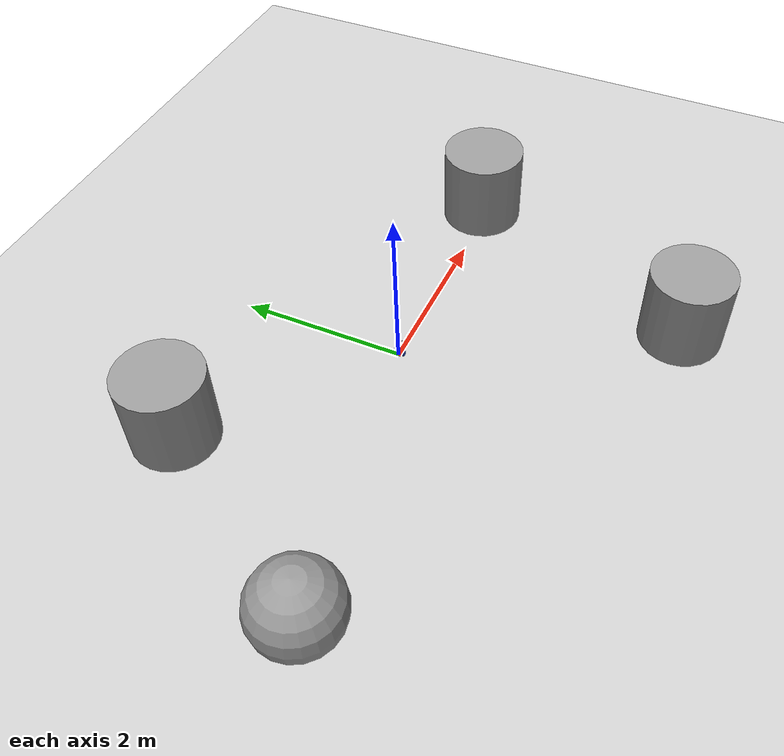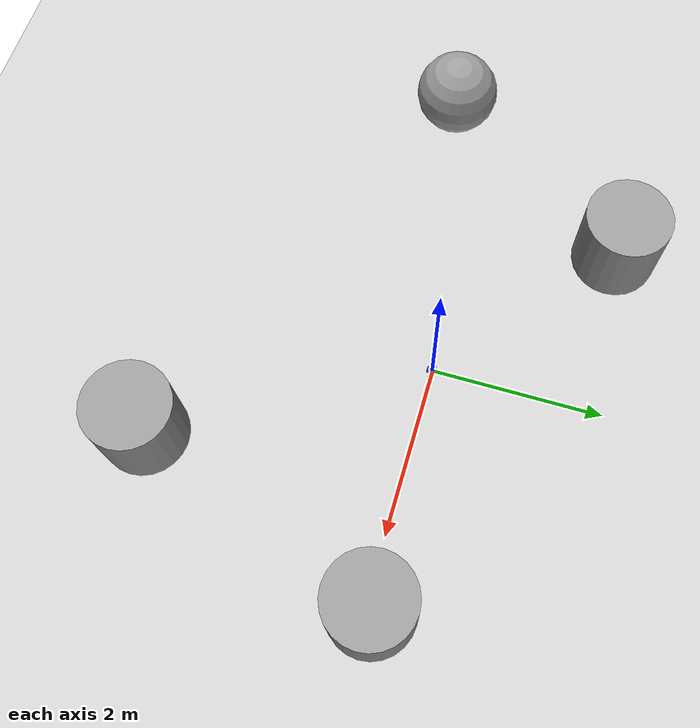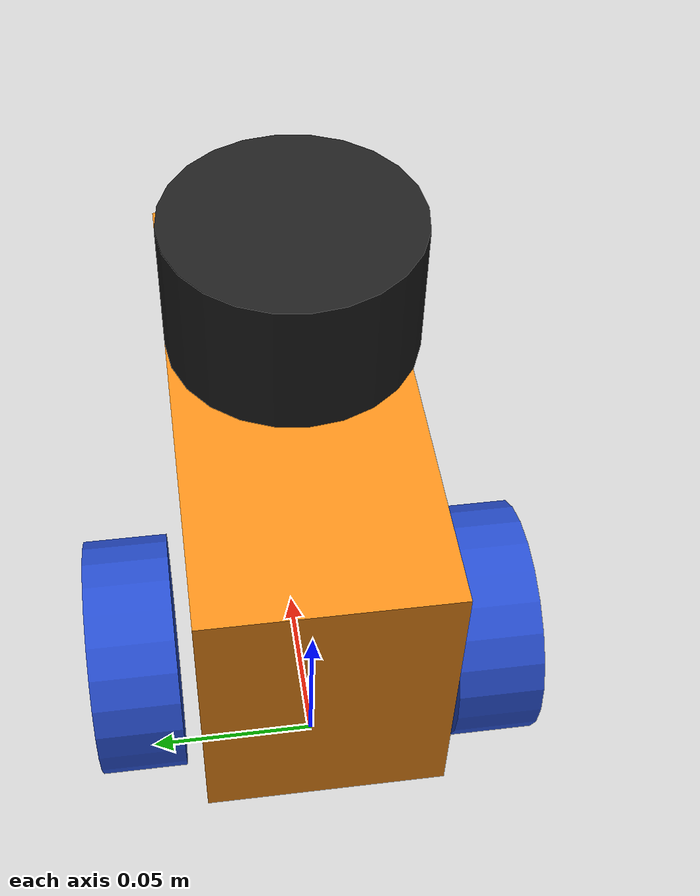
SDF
<sdf version="1.7">
 <world name="default">
  <light name="sun" type="directional">
   <pose>0 0 10 0 -0 0</pose>
   <diffuse>0.8 0.8 0.8 1</diffuse>
   <specular>0.2 0.2 0.2 1</specular>
   <attenuation>
    <range>1000</range>
    <constant>0.9</constant>
    <linear>0.01</linear>
    <quadratic>0.001</quadratic>
   </attenuation>
   <direction>-0.5 0.1 -0.9</direction>
   <spot><inner_angle>0</inner_angle><outer_angle>0</outer_angle><falloff>0</falloff></spot>
  </light>
  <model name="ground_plane">
   <static>1</static>
   <link name="link">
    <collision name="collision">
     <geometry><plane><normal>0 0 1</normal><size>100 100</size></plane></geometry>
     <surface>
      <contact><collide_bitmask>65535</collide_bitmask></contact>
      <friction><ode><mu>100</mu><mu2>50</mu2></ode></friction>
     </surface>
    </collision>
    <visual name="visual">
     <cast_shadows>0</cast_shadows>
     <geometry><plane><normal>0 0 1</normal><size>100 100</size></plane></geometry>
     <material>
      <script><uri>file://media/materials/scripts/gazebo.material</uri><name>Gazebo/Grey</name></script>
     </material>
    </visual>
   </link>
  </model>
  <gravity>0 0 -9.8</gravity>
  <magnetic_field>6e-06 2.3e-05 -4.2e-05</magnetic_field>
  <atmosphere type="adiabatic"/>
  <physics type="ode">
   <max_step_size>0.001</max_step_size>
   <real_time_factor>1</real_time_factor>
   <real_time_update_rate>1000</real_time_update_rate>
  </physics>
  <scene><ambient>0.4 0.4 0.4 1</ambient><background>0.7 0.7 0.7 1</background><shadows>1</shadows></scene>
  <audio><device>default</device></audio>
  <spherical_coordinates>
   <surface_model>EARTH_WGS84</surface_model>
   <latitude_deg>0</latitude_deg>
   <longitude_deg>0</longitude_deg>
   <elevation>0</elevation>
   <heading_deg>0</heading_deg>
  </spherical_coordinates>
  <model name="mandooka">
   <link name="base_link">
    <inertial>
     <pose>0.03582 0 0.043115 0 -0 0</pose>
     <mass>0.61</mass>
     <inertia>
      <ixx>0.00126098</ixx>
      <ixy>0</ixy>
      <ixz>3.15574e-05</ixz>
      <iyy>0.00214807</iyy>
      <iyz>0</iyz>
      <izz>0.00142132</izz>
     </inertia>
    </inertial>
    <collision name="base_link_fixed_joint_lump__chassis_collision">
     <pose>0.035 0 0.03 0 -0 0</pose>
     <geometry><box><size>0.16 0.07 0.09</size></box></geometry>
    </collision>
    <collision name="base_link_fixed_joint_lump__caster_wheel_collision_1">
     <pose>0.085 0 -0.02 0 -0 0</pose>
     <geometry><sphere><radius>0.015</radius></sphere></geometry>
     <surface><friction><ode><mu>0.001</mu><mu2>0.001</mu2></ode></friction></surface>
    </collision>
    <collision name="base_link_fixed_joint_lump__laser_frame_collision_2">
     <pose>0.035 0 0.115 0 -0 0</pose>
     <geometry><cylinder><length>0.04</length><radius>0.05</radius></cylinder></geometry>
    </collision>
    <visual name="base_link_fixed_joint_lump__chassis_visual">
     <pose>0.035 0 0.03 0 -0 0</pose>
     <geometry><box><size>0.16 0.07 0.09</size></box></geometry>
     <material>
      <script><name>Gazebo/Orange</name><uri>file://media/materials/scripts/gazebo.material</uri></script>
     </material>
    </visual>
    <visual name="base_link_fixed_joint_lump__caster_wheel_visual_1">
     <pose>0.085 0 -0.02 0 -0 0</pose>
     <geometry><sphere><radius>0.015</radius></sphere></geometry>
     <material>
      <script><name>Gazebo/White</name><uri>file://media/materials/scripts/gazebo.material</uri></script>
     </material>
    </visual>
    <visual name="base_link_fixed_joint_lump__laser_frame_visual_2">
     <pose>0.035 0 0.115 0 -0 0</pose>
     <geometry><cylinder><length>0.04</length><radius>0.035</radius></cylinder></geometry>
     <material>
      <script><name>Gazebo/Black</name><uri>file://media/materials/scripts/gazebo.material</uri></script>
     </material>
    </visual>
    <visual name="base_link_fixed_joint_lump__laser_frame_visual_3">
     <pose>0.035 0 0.065 0 -0 0</pose>
     <geometry><cylinder><length>0.1</length><radius>0.01</radius></cylinder></geometry>
     <material>
      <script><name>Gazebo/Black</name><uri>file://media/materials/scripts/gazebo.material</uri></script>
     </material>
    </visual>
    <sensor name="laser" type="ray">
     <visualize>1</visualize>
     <update_rate>10</update_rate>
     <ray>
      <scan>
       <horizontal>
        <samples>360</samples>
        <min_angle>-3.14</min_angle>
        <max_angle>3.14</max_angle>
        <resolution>1</resolution>
       </horizontal>
       <vertical><samples>1</samples><min_angle>0</min_angle><max_angle>0</max_angle></vertical>
      </scan>
      <range><min>0.3</min><max>12</max></range>
     </ray>
     <plugin name="laser_controller" filename="libgazebo_ros_ray_sensor.so">
      <ros><argument>~/out:=scan</argument></ros>
      <output_type>sensor_msgs/LaserScan</output_type>
      <frame_name>laser_frame</frame_name>
     </plugin>
     <pose>0.035 0 0.115 0 -0 0</pose>
    </sensor>
   </link>
   <joint name="left_wheel_joint" type="revolute">
    <pose relative_to="base_link">0 0.0525 0 -1.5708 0 0</pose>
    <parent>base_link</parent>
    <child>left_wheel</child>
    <axis>
     <xyz>0 0 1</xyz>
     <limit><lower>-1e+16</lower><upper>1e+16</upper></limit>
     <dynamics><spring_reference>0</spring_reference><spring_stiffness>0</spring_stiffness></dynamics>
    </axis>
   </joint>
   <link name="left_wheel">
    <pose relative_to="left_wheel_joint">0 0 0 0 -0 0</pose>
    <inertial>
     <mass>0.035</mass>
     <inertia>
      <ixx>1.25417e-05</ixx>
      <ixy>0</ixy>
      <ixz>0</ixz>
      <iyy>1.25417e-05</iyy>
      <iyz>0</iyz>
      <izz>2.14375e-05</izz>
     </inertia>
    </inertial>
    <collision name="left_wheel_collision">
     <geometry><sphere><radius>0.035</radius></sphere></geometry>
    </collision>
    <visual name="left_wheel_visual">
     <geometry><cylinder><length>0.025</length><radius>0.035</radius></cylinder></geometry>
     <material>
      <script><name>Gazebo/Blue</name><uri>file://media/materials/scripts/gazebo.material</uri></script>
     </material>
    </visual>
   </link>
   <joint name="right_wheel_joint" type="revolute">
    <pose relative_to="base_link">0 -0.0525 0 1.5708 -0 0</pose>
    <parent>base_link</parent>
    <child>right_wheel</child>
    <axis>
     <xyz>0 0 -1</xyz>
     <limit><lower>-1e+16</lower><upper>1e+16</upper></limit>
     <dynamics><spring_reference>0</spring_reference><spring_stiffness>0</spring_stiffness></dynamics>
    </axis>
   </joint>
   <link name="right_wheel">
    <pose relative_to="right_wheel_joint">0 0 0 0 -0 0</pose>
    <inertial>
     <mass>0.035</mass>
     <inertia>
      <ixx>1.25417e-05</ixx>
      <ixy>0</ixy>
      <ixz>0</ixz>
      <iyy>1.25417e-05</iyy>
      <iyz>0</iyz>
      <izz>2.14375e-05</izz>
     </inertia>
    </inertial>
    <collision name="right_wheel_collision">
     <geometry><sphere><radius>0.035</radius></sphere></geometry>
    </collision>
    <visual name="right_wheel_visual">
     <geometry><cylinder><length>0.025</length><radius>0.035</radius></cylinder></geometry>
     <material>
      <script><name>Gazebo/Blue</name><uri>file://media/materials/scripts/gazebo.material</uri></script>
     </material>
    </visual>
   </link>
   <static>0</static>
   <plugin name="gazebo_ros2_control" filename="libgazebo_ros2_control.so">
    <parameters>/home/wagle/mandooka_ws/install/mandooka/share/mandooka/config/my_controllers.yaml</parameters>
    <parameters>/home/wagle/mandooka_ws/install/mandooka/share/mandooka/config/gaz_ros2_ctl_use_sim.yaml</parameters>
   </plugin>
   <pose>0.0125 -9.6e-05 0.034998 -2.6e-05 -2.2e-05 -0.00235</pose>
  </model>
  <model name="unit_sphere">
   <pose>-3.51789 -0.640386 0.5 0 -0 0</pose>
   <link name="link">
    <inertial>
     <mass>1</mass>
     <inertia><ixx>0.1</ixx><ixy>0</ixy><ixz>0</ixz><iyy>0.1</iyy><iyz>0</iyz><izz>0.1</izz></inertia>
    </inertial>
    <collision name="collision"><geometry><sphere><radius>0.5</radius></sphere></geometry></collision>
    <visual name="visual">
     <geometry><sphere><radius>0.5</radius></sphere></geometry>
     <material>
      <script><name>Gazebo/Grey</name><uri>file://media/materials/scripts/gazebo.material</uri></script>
     </material>
    </visual>
   </link>
  </model>
  <model name="unit_cylinder">
   <pose>-2.0261 1.72845 0.499997 3e-06 4e-06 -0</pose>
   <link name="link">
    <inertial>
     <mass>1</mass>
     <inertia><ixx>0.145833</ixx><ixy>0</ixy><ixz>0</ixz><iyy>0.145833</iyy><iyz>0</iyz><izz>0.125</izz></inertia>
    </inertial>
    <collision name="collision">
     <geometry><cylinder><radius>0.5</radius><length>1</length></cylinder></geometry>
    </collision>
    <visual name="visual">
     <geometry><cylinder><radius>0.5</radius><length>1</length></cylinder></geometry>
     <material>
      <script><name>Gazebo/Grey</name><uri>file://media/materials/scripts/gazebo.material</uri></script>
     </material>
    </visual>
   </link>
  </model>
  <model name="unit_cylinder_0">
   <pose>2.7928 0.078966 0.499993 -3e-06 -4e-06 -0</pose>
   <link name="link">
    <inertial>
     <mass>1</mass>
     <inertia><ixx>0.145833</ixx><ixy>0</ixy><ixz>0</ixz><iyy>0.145833</iyy><iyz>0</iyz><izz>0.125</izz></inertia>
    </inertial>
    <collision name="collision">
     <geometry><cylinder><radius>0.5</radius><length>1</length></cylinder></geometry>
    </collision>
    <visual name="visual">
     <geometry><cylinder><radius>0.5</radius><length>1</length></cylinder></geometry>
     <material>
      <script><name>Gazebo/Grey</name><uri>file://media/materials/scripts/gazebo.material</uri></script>
     </material>
    </visual>
   </link>
  </model>
  <model name="unit_cylinder_1">
   <pose>1.61294 -2.92194 0.499997 3e-06 4e-06 -0</pose>
   <link name="link">
    <inertial>
     <mass>1</mass>
     <inertia><ixx>0.145833</ixx><ixy>0</ixy><ixz>0</ixz><iyy>0.145833</iyy><iyz>0</iyz><izz>0.125</izz></inertia>
    </inertial>
    <collision name="collision">
     <geometry><cylinder><radius>0.5</radius><length>1</length></cylinder></geometry>
    </collision>
    <visual name="visual">
     <geometry><cylinder><radius>0.5</radius><length>1</length></cylinder></geometry>
     <material>
      <script><name>Gazebo/Grey</name><uri>file://media/materials/scripts/gazebo.material</uri></script>
     </material>
    </visual>
   </link>
  </model>
 </world>
</sdf>
